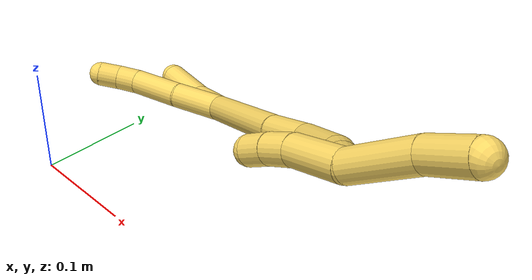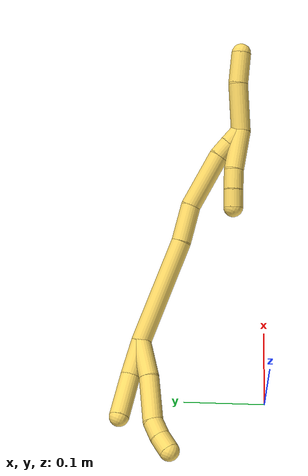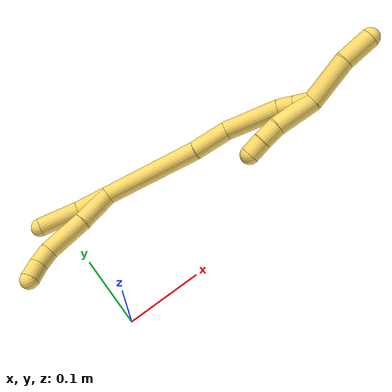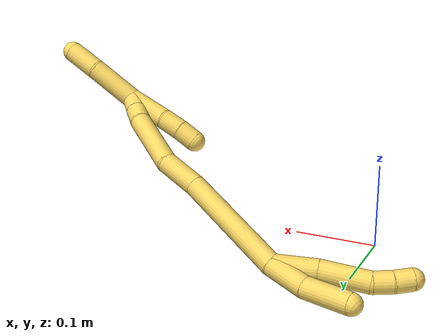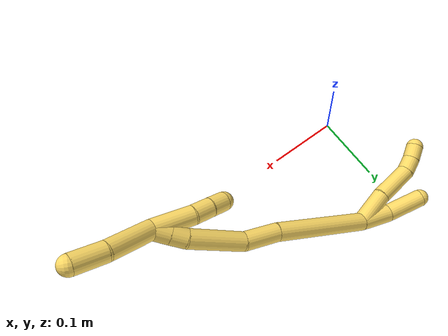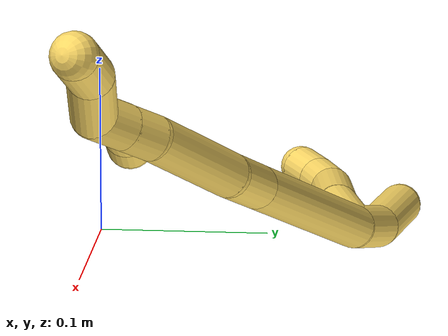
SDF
<sdf version="1.7">
 <world name="default">
  <model name="5">
   <static>0</static>
   <link name="5">
    <collision name="collision-cylinder-e_1_2_8">
     <pose>-0.011467 0.01063 -0.019661 -2.64595 -0.474018 1.5244</pose>
     <geometry><cylinder><radius>0.0125</radius><length>0.050241</length></cylinder></geometry>
     <surface>
      <friction><ode><mu>1.16</mu><mu2>1.16</mu2><slip1>0</slip1><slip2>0</slip2></ode></friction>
      <contact><ode><kp>1e+06</kp><kd>1</kd><max_vel>0</max_vel><min_depth>0.001</min_depth></ode></contact>
     </surface>
    </collision>
    <visual name="visual-cylinder-e_1_2_8">
     <pose>-0.011467 0.01063 -0.019661 -2.64595 -0.474018 1.5244</pose>
     <geometry><cylinder><radius>0.0125</radius><length>0.050241</length></cylinder></geometry>
     <material><ambient>1 0.858824 0.4 1</ambient></material>
    </visual>
    <collision name="collision-cylinder-e_2_8_9">
     <pose>-0.033848 0.030611 -0.063558 -2.77336 -0.397774 1.6498</pose>
     <geometry><cylinder><radius>0.0125</radius><length>0.056353</length></cylinder></geometry>
     <surface>
      <friction><ode><mu>1.16</mu><mu2>1.16</mu2><slip1>0</slip1><slip2>0</slip2></ode></friction>
      <contact><ode><kp>1e+06</kp><kd>1</kd><max_vel>0</max_vel><min_depth>0.001</min_depth></ode></contact>
     </surface>
    </collision>
    <visual name="visual-cylinder-e_2_8_9">
     <pose>-0.033848 0.030611 -0.063558 -2.77336 -0.397774 1.6498</pose>
     <geometry><cylinder><radius>0.0125</radius><length>0.056353</length></cylinder></geometry>
     <material><ambient>1 0.858824 0.4 1</ambient></material>
    </visual>
    <collision name="collision-cylinder-e_3_9_10">
     <pose>-0.051027 0.045658 -0.09493 -2.46795 -0.601249 1.44933</pose>
     <geometry><cylinder><radius>0.0125</radius><length>0.022146</length></cylinder></geometry>
     <surface>
      <friction><ode><mu>1.16</mu><mu2>1.16</mu2><slip1>0</slip1><slip2>0</slip2></ode></friction>
      <contact><ode><kp>1e+06</kp><kd>1</kd><max_vel>0</max_vel><min_depth>0.001</min_depth></ode></contact>
     </surface>
    </collision>
    <visual name="visual-cylinder-e_3_9_10">
     <pose>-0.051027 0.045658 -0.09493 -2.46795 -0.601249 1.44933</pose>
     <geometry><cylinder><radius>0.0125</radius><length>0.022146</length></cylinder></geometry>
     <material><ambient>1 0.858824 0.4 1</ambient></material>
    </visual>
    <collision name="collision-cylinder-e_4_10_6">
     <pose>-0.063983 0.057443 -0.107645 -2.31256 -0.681099 1.35597</pose>
     <geometry><cylinder><radius>0.0125</radius><length>0.021259</length></cylinder></geometry>
     <surface>
      <friction><ode><mu>1.16</mu><mu2>1.16</mu2><slip1>0</slip1><slip2>0</slip2></ode></friction>
      <contact><ode><kp>1e+06</kp><kd>1</kd><max_vel>0</max_vel><min_depth>0.001</min_depth></ode></contact>
     </surface>
    </collision>
    <visual name="visual-cylinder-e_4_10_6">
     <pose>-0.063983 0.057443 -0.107645 -2.31256 -0.681099 1.35597</pose>
     <geometry><cylinder><radius>0.0125</radius><length>0.021259</length></cylinder></geometry>
     <material><ambient>1 0.858824 0.4 1</ambient></material>
    </visual>
    <collision name="collision-cylinder-e_1_2_11">
     <pose>-0.002618 0.000826 -0.022514 -3.10494 -0.115685 2.52852</pose>
     <geometry><cylinder><radius>0.0125</radius><length>0.045361</length></cylinder></geometry>
     <surface>
      <friction><ode><mu>1.16</mu><mu2>1.16</mu2><slip1>0</slip1><slip2>0</slip2></ode></friction>
      <contact><ode><kp>1e+06</kp><kd>1</kd><max_vel>0</max_vel><min_depth>0.001</min_depth></ode></contact>
     </surface>
    </collision>
    <visual name="visual-cylinder-e_1_2_11">
     <pose>-0.002618 0.000826 -0.022514 -3.10494 -0.115685 2.52852</pose>
     <geometry><cylinder><radius>0.0125</radius><length>0.045361</length></cylinder></geometry>
     <material><ambient>1 0.858824 0.4 1</ambient></material>
    </visual>
    <collision name="collision-cylinder-e_2_11_5">
     <pose>-0.007432 0.009013 -0.071245 -2.86782 -0.080462 0.568605</pose>
     <geometry><cylinder><radius>0.0125</radius><length>0.054639</length></cylinder></geometry>
     <surface>
      <friction><ode><mu>1.16</mu><mu2>1.16</mu2><slip1>0</slip1><slip2>0</slip2></ode></friction>
      <contact><ode><kp>1e+06</kp><kd>1</kd><max_vel>0</max_vel><min_depth>0.001</min_depth></ode></contact>
     </surface>
    </collision>
    <visual name="visual-cylinder-e_2_11_5">
     <pose>-0.007432 0.009013 -0.071245 -2.86782 -0.080462 0.568605</pose>
     <geometry><cylinder><radius>0.0125</radius><length>0.054639</length></cylinder></geometry>
     <material><ambient>1 0.858824 0.4 1</ambient></material>
    </visual>
    <collision name="collision-cylinder-e_1_2_12">
     <pose>0.005643 0.010585 0.066991 -0.156708 0.083014 -0.006522</pose>
     <geometry><cylinder><radius>0.0125</radius><length>0.136113</length></cylinder></geometry>
     <surface>
      <friction><ode><mu>1.16</mu><mu2>1.16</mu2><slip1>0</slip1><slip2>0</slip2></ode></friction>
      <contact><ode><kp>1e+06</kp><kd>1</kd><max_vel>0</max_vel><min_depth>0.001</min_depth></ode></contact>
     </surface>
    </collision>
    <visual name="visual-cylinder-e_1_2_12">
     <pose>0.005643 0.010585 0.066991 -0.156708 0.083014 -0.006522</pose>
     <geometry><cylinder><radius>0.0125</radius><length>0.136113</length></cylinder></geometry>
     <material><ambient>1 0.858824 0.4 1</ambient></material>
    </visual>
    <collision name="collision-cylinder-e_2_12_13">
     <pose>0.015754 0.022841 0.157622 -0.07057 0.18635 -0.006597</pose>
     <geometry><cylinder><radius>0.0125</radius><length>0.048233</length></cylinder></geometry>
     <surface>
      <friction><ode><mu>1.16</mu><mu2>1.16</mu2><slip1>0</slip1><slip2>0</slip2></ode></friction>
      <contact><ode><kp>1e+06</kp><kd>1</kd><max_vel>0</max_vel><min_depth>0.001</min_depth></ode></contact>
     </surface>
    </collision>
    <visual name="visual-cylinder-e_2_12_13">
     <pose>0.015754 0.022841 0.157622 -0.07057 0.18635 -0.006597</pose>
     <geometry><cylinder><radius>0.0125</radius><length>0.048233</length></cylinder></geometry>
     <material><ambient>1 0.858824 0.4 1</ambient></material>
    </visual>
    <collision name="collision-cylinder-e_3_13_14">
     <pose>0.019574 0.034952 0.216393 -0.288875 -0.017681 0.002572</pose>
     <geometry><cylinder><radius>0.0125</radius><length>0.073311</length></cylinder></geometry>
     <surface>
      <friction><ode><mu>1.16</mu><mu2>1.16</mu2><slip1>0</slip1><slip2>0</slip2></ode></friction>
      <contact><ode><kp>1e+06</kp><kd>1</kd><max_vel>0</max_vel><min_depth>0.001</min_depth></ode></contact>
     </surface>
    </collision>
    <visual name="visual-cylinder-e_3_13_14">
     <pose>0.019574 0.034952 0.216393 -0.288875 -0.017681 0.002572</pose>
     <geometry><cylinder><radius>0.0125</radius><length>0.073311</length></cylinder></geometry>
     <material><ambient>1 0.858824 0.4 1</ambient></material>
    </visual>
    <collision name="collision-cylinder-e_4_14_15">
     <pose>0.016798 0.049008 0.260765 -0.372863 -0.211293 0.039998</pose>
     <geometry><cylinder><radius>0.0125</radius><length>0.020297</length></cylinder></geometry>
     <surface>
      <friction><ode><mu>1.16</mu><mu2>1.16</mu2><slip1>0</slip1><slip2>0</slip2></ode></friction>
      <contact><ode><kp>1e+06</kp><kd>1</kd><max_vel>0</max_vel><min_depth>0.001</min_depth></ode></contact>
     </surface>
    </collision>
    <visual name="visual-cylinder-e_4_14_15">
     <pose>0.016798 0.049008 0.260765 -0.372863 -0.211293 0.039998</pose>
     <geometry><cylinder><radius>0.0125</radius><length>0.020297</length></cylinder></geometry>
     <material><ambient>1 0.858824 0.4 1</ambient></material>
    </visual>
    <collision name="collision-cylinder-e_5_15_1">
     <pose>0.012235 0.056616 0.279988 -0.380569 -0.22267 0.043061</pose>
     <geometry><cylinder><radius>0.0125</radius><length>0.022046</length></cylinder></geometry>
     <surface>
      <friction><ode><mu>1.16</mu><mu2>1.16</mu2><slip1>0</slip1><slip2>0</slip2></ode></friction>
      <contact><ode><kp>1e+06</kp><kd>1</kd><max_vel>0</max_vel><min_depth>0.001</min_depth></ode></contact>
     </surface>
    </collision>
    <visual name="visual-cylinder-e_5_15_1">
     <pose>0.012235 0.056616 0.279988 -0.380569 -0.22267 0.043061</pose>
     <geometry><cylinder><radius>0.0125</radius><length>0.022046</length></cylinder></geometry>
     <material><ambient>1 0.858824 0.4 1</ambient></material>
    </visual>
    <collision name="collision-cylinder-e_1_1_16">
     <pose>0.003524 0.060739 0.264552 -3.13647 -0.242106 3.09947</pose>
     <geometry><cylinder><radius>0.0125</radius><length>0.052363</length></cylinder></geometry>
     <surface>
      <friction><ode><mu>1.16</mu><mu2>1.16</mu2><slip1>0</slip1><slip2>0</slip2></ode></friction>
      <contact><ode><kp>1e+06</kp><kd>1</kd><max_vel>0</max_vel><min_depth>0.001</min_depth></ode></contact>
     </surface>
    </collision>
    <visual name="visual-cylinder-e_1_1_16">
     <pose>0.003524 0.060739 0.264552 -3.13647 -0.242106 3.09947</pose>
     <geometry><cylinder><radius>0.0125</radius><length>0.052363</length></cylinder></geometry>
     <material><ambient>1 0.858824 0.4 1</ambient></material>
    </visual>
    <collision name="collision-cylinder-e_2_16_17">
     <pose>-0.007801 0.060294 0.227653 3.09146 -0.413773 -2.90382</pose>
     <geometry><cylinder><radius>0.0125</radius><length>0.025111</length></cylinder></geometry>
     <surface>
      <friction><ode><mu>1.16</mu><mu2>1.16</mu2><slip1>0</slip1><slip2>0</slip2></ode></friction>
      <contact><ode><kp>1e+06</kp><kd>1</kd><max_vel>0</max_vel><min_depth>0.001</min_depth></ode></contact>
     </surface>
    </collision>
    <visual name="visual-cylinder-e_2_16_17">
     <pose>-0.007801 0.060294 0.227653 3.09146 -0.413773 -2.90382</pose>
     <geometry><cylinder><radius>0.0125</radius><length>0.025111</length></cylinder></geometry>
     <material><ambient>1 0.858824 0.4 1</ambient></material>
    </visual>
    <collision name="collision-cylinder-e_3_17_4">
     <pose>-0.017894 0.05841 0.206187 3.01133 -0.464439 -2.60338</pose>
     <geometry><cylinder><radius>0.0125</radius><length>0.022526</length></cylinder></geometry>
     <surface>
      <friction><ode><mu>1.16</mu><mu2>1.16</mu2><slip1>0</slip1><slip2>0</slip2></ode></friction>
      <contact><ode><kp>1e+06</kp><kd>1</kd><max_vel>0</max_vel><min_depth>0.001</min_depth></ode></contact>
     </surface>
    </collision>
    <visual name="visual-cylinder-e_3_17_4">
     <pose>-0.017894 0.05841 0.206187 3.01133 -0.464439 -2.60338</pose>
     <geometry><cylinder><radius>0.0125</radius><length>0.022526</length></cylinder></geometry>
     <material><ambient>1 0.858824 0.4 1</ambient></material>
    </visual>
    <collision name="collision-cylinder-e_1_1_18">
     <pose>0.025282 0.064977 0.315493 -0.169469 0.538833 -0.046899</pose>
     <geometry><cylinder><radius>0.0125</radius><length>0.060338</length></cylinder></geometry>
     <surface>
      <friction><ode><mu>1.16</mu><mu2>1.16</mu2><slip1>0</slip1><slip2>0</slip2></ode></friction>
      <contact><ode><kp>1e+06</kp><kd>1</kd><max_vel>0</max_vel><min_depth>0.001</min_depth></ode></contact>
     </surface>
    </collision>
    <visual name="visual-cylinder-e_1_1_18">
     <pose>0.025282 0.064977 0.315493 -0.169469 0.538833 -0.046899</pose>
     <geometry><cylinder><radius>0.0125</radius><length>0.060338</length></cylinder></geometry>
     <material><ambient>1 0.858824 0.4 1</ambient></material>
    </visual>
    <collision name="collision-cylinder-e_2_18_3">
     <pose>0.047704 0.071304 0.359489 -0.105724 0.357625 -0.019126</pose>
     <geometry><cylinder><radius>0.0125</radius><length>0.039662</length></cylinder></geometry>
     <surface>
      <friction><ode><mu>1.16</mu><mu2>1.16</mu2><slip1>0</slip1><slip2>0</slip2></ode></friction>
      <contact><ode><kp>1e+06</kp><kd>1</kd><max_vel>0</max_vel><min_depth>0.001</min_depth></ode></contact>
     </surface>
    </collision>
    <visual name="visual-cylinder-e_2_18_3">
     <pose>0.047704 0.071304 0.359489 -0.105724 0.357625 -0.019126</pose>
     <geometry><cylinder><radius>0.0125</radius><length>0.039662</length></cylinder></geometry>
     <material><ambient>1 0.858824 0.4 1</ambient></material>
    </visual>
    <collision name="collision-sphere-3">
     <pose>0.054646 0.073264 0.377962 0 -0 0</pose>
     <geometry><sphere><radius>0.0125</radius></sphere></geometry>
     <surface>
      <friction><ode><mu>1.16</mu><mu2>1.16</mu2><slip1>0</slip1><slip2>0</slip2></ode></friction>
      <contact><ode><kp>1e+06</kp><kd>1</kd><max_vel>0</max_vel><min_depth>0.001</min_depth></ode></contact>
     </surface>
    </collision>
    <visual name="visual-sphere-3">
     <pose>0.054646 0.073264 0.377962 0 -0 0</pose>
     <geometry><sphere><radius>0.0125</radius></sphere></geometry>
     <material><ambient>1 0.858824 0.4 1</ambient></material>
    </visual>
    <collision name="collision-sphere-11">
     <pose>-0.005236 0.001651 -0.045028 0 -0 0</pose>
     <geometry><sphere><radius>0.0125</radius></sphere></geometry>
     <surface>
      <friction><ode><mu>1.16</mu><mu2>1.16</mu2><slip1>0</slip1><slip2>0</slip2></ode></friction>
      <contact><ode><kp>1e+06</kp><kd>1</kd><max_vel>0</max_vel><min_depth>0.001</min_depth></ode></contact>
     </surface>
    </collision>
    <visual name="visual-sphere-11">
     <pose>-0.005236 0.001651 -0.045028 0 -0 0</pose>
     <geometry><sphere><radius>0.0125</radius></sphere></geometry>
     <material><ambient>1 0.858824 0.4 1</ambient></material>
    </visual>
    <collision name="collision-sphere-6">
     <pose>-0.070676 0.063531 -0.113224 0 -0 0</pose>
     <geometry><sphere><radius>0.0125</radius></sphere></geometry>
     <surface>
      <friction><ode><mu>1.16</mu><mu2>1.16</mu2><slip1>0</slip1><slip2>0</slip2></ode></friction>
      <contact><ode><kp>1e+06</kp><kd>1</kd><max_vel>0</max_vel><min_depth>0.001</min_depth></ode></contact>
     </surface>
    </collision>
    <visual name="visual-sphere-6">
     <pose>-0.070676 0.063531 -0.113224 0 -0 0</pose>
     <geometry><sphere><radius>0.0125</radius></sphere></geometry>
     <material><ambient>1 0.858824 0.4 1</ambient></material>
    </visual>
    <collision name="collision-sphere-10">
     <pose>-0.05729 0.051355 -0.102066 0 -0 0</pose>
     <geometry><sphere><radius>0.0125</radius></sphere></geometry>
     <surface>
      <friction><ode><mu>1.16</mu><mu2>1.16</mu2><slip1>0</slip1><slip2>0</slip2></ode></friction>
      <contact><ode><kp>1e+06</kp><kd>1</kd><max_vel>0</max_vel><min_depth>0.001</min_depth></ode></contact>
     </surface>
    </collision>
    <visual name="visual-sphere-10">
     <pose>-0.05729 0.051355 -0.102066 0 -0 0</pose>
     <geometry><sphere><radius>0.0125</radius></sphere></geometry>
     <material><ambient>1 0.858824 0.4 1</ambient></material>
    </visual>
    <collision name="collision-sphere-9">
     <pose>-0.044763 0.039962 -0.087793 0 -0 0</pose>
     <geometry><sphere><radius>0.0125</radius></sphere></geometry>
     <surface>
      <friction><ode><mu>1.16</mu><mu2>1.16</mu2><slip1>0</slip1><slip2>0</slip2></ode></friction>
      <contact><ode><kp>1e+06</kp><kd>1</kd><max_vel>0</max_vel><min_depth>0.001</min_depth></ode></contact>
     </surface>
    </collision>
    <visual name="visual-sphere-9">
     <pose>-0.044763 0.039962 -0.087793 0 -0 0</pose>
     <geometry><sphere><radius>0.0125</radius></sphere></geometry>
     <material><ambient>1 0.858824 0.4 1</ambient></material>
    </visual>
    <collision name="collision-sphere-2">
     <geometry><sphere><radius>0.0125</radius></sphere></geometry>
     <surface>
      <friction><ode><mu>1.16</mu><mu2>1.16</mu2><slip1>0</slip1><slip2>0</slip2></ode></friction>
      <contact><ode><kp>1e+06</kp><kd>1</kd><max_vel>0</max_vel><min_depth>0.001</min_depth></ode></contact>
     </surface>
    </collision>
    <visual name="visual-sphere-2">
     <geometry><sphere><radius>0.0125</radius></sphere></geometry>
     <material><ambient>1 0.858824 0.4 1</ambient></material>
    </visual>
    <collision name="collision-sphere-8">
     <pose>-0.022933 0.02126 -0.039322 0 -0 0</pose>
     <geometry><sphere><radius>0.0125</radius></sphere></geometry>
     <surface>
      <friction><ode><mu>1.16</mu><mu2>1.16</mu2><slip1>0</slip1><slip2>0</slip2></ode></friction>
      <contact><ode><kp>1e+06</kp><kd>1</kd><max_vel>0</max_vel><min_depth>0.001</min_depth></ode></contact>
     </surface>
    </collision>
    <visual name="visual-sphere-8">
     <pose>-0.022933 0.02126 -0.039322 0 -0 0</pose>
     <geometry><sphere><radius>0.0125</radius></sphere></geometry>
     <material><ambient>1 0.858824 0.4 1</ambient></material>
    </visual>
    <collision name="collision-sphere-5">
     <pose>-0.009628 0.016376 -0.097461 0 -0 0</pose>
     <geometry><sphere><radius>0.0125</radius></sphere></geometry>
     <surface>
      <friction><ode><mu>1.16</mu><mu2>1.16</mu2><slip1>0</slip1><slip2>0</slip2></ode></friction>
      <contact><ode><kp>1e+06</kp><kd>1</kd><max_vel>0</max_vel><min_depth>0.001</min_depth></ode></contact>
     </surface>
    </collision>
    <visual name="visual-sphere-5">
     <pose>-0.009628 0.016376 -0.097461 0 -0 0</pose>
     <geometry><sphere><radius>0.0125</radius></sphere></geometry>
     <material><ambient>1 0.858824 0.4 1</ambient></material>
    </visual>
    <collision name="collision-sphere-12">
     <pose>0.011286 0.02117 0.133982 0 -0 0</pose>
     <geometry><sphere><radius>0.0125</radius></sphere></geometry>
     <surface>
      <friction><ode><mu>1.16</mu><mu2>1.16</mu2><slip1>0</slip1><slip2>0</slip2></ode></friction>
      <contact><ode><kp>1e+06</kp><kd>1</kd><max_vel>0</max_vel><min_depth>0.001</min_depth></ode></contact>
     </surface>
    </collision>
    <visual name="visual-sphere-12">
     <pose>0.011286 0.02117 0.133982 0 -0 0</pose>
     <geometry><sphere><radius>0.0125</radius></sphere></geometry>
     <material><ambient>1 0.858824 0.4 1</ambient></material>
    </visual>
    <collision name="collision-sphere-13">
     <pose>0.020223 0.024512 0.181262 0 -0 0</pose>
     <geometry><sphere><radius>0.0125</radius></sphere></geometry>
     <surface>
      <friction><ode><mu>1.16</mu><mu2>1.16</mu2><slip1>0</slip1><slip2>0</slip2></ode></friction>
      <contact><ode><kp>1e+06</kp><kd>1</kd><max_vel>0</max_vel><min_depth>0.001</min_depth></ode></contact>
     </surface>
    </collision>
    <visual name="visual-sphere-13">
     <pose>0.020223 0.024512 0.181262 0 -0 0</pose>
     <geometry><sphere><radius>0.0125</radius></sphere></geometry>
     <material><ambient>1 0.858824 0.4 1</ambient></material>
    </visual>
    <collision name="collision-sphere-14">
     <pose>0.018926 0.045393 0.251524 0 -0 0</pose>
     <geometry><sphere><radius>0.0125</radius></sphere></geometry>
     <surface>
      <friction><ode><mu>1.16</mu><mu2>1.16</mu2><slip1>0</slip1><slip2>0</slip2></ode></friction>
      <contact><ode><kp>1e+06</kp><kd>1</kd><max_vel>0</max_vel><min_depth>0.001</min_depth></ode></contact>
     </surface>
    </collision>
    <visual name="visual-sphere-14">
     <pose>0.018926 0.045393 0.251524 0 -0 0</pose>
     <geometry><sphere><radius>0.0125</radius></sphere></geometry>
     <material><ambient>1 0.858824 0.4 1</ambient></material>
    </visual>
    <collision name="collision-sphere-15">
     <pose>0.01467 0.052622 0.270006 0 -0 0</pose>
     <geometry><sphere><radius>0.0125</radius></sphere></geometry>
     <surface>
      <friction><ode><mu>1.16</mu><mu2>1.16</mu2><slip1>0</slip1><slip2>0</slip2></ode></friction>
      <contact><ode><kp>1e+06</kp><kd>1</kd><max_vel>0</max_vel><min_depth>0.001</min_depth></ode></contact>
     </surface>
    </collision>
    <visual name="visual-sphere-15">
     <pose>0.01467 0.052622 0.270006 0 -0 0</pose>
     <geometry><sphere><radius>0.0125</radius></sphere></geometry>
     <material><ambient>1 0.858824 0.4 1</ambient></material>
    </visual>
    <collision name="collision-sphere-1">
     <pose>0.009801 0.060609 0.28997 0 -0 0</pose>
     <geometry><sphere><radius>0.0125</radius></sphere></geometry>
     <surface>
      <friction><ode><mu>1.16</mu><mu2>1.16</mu2><slip1>0</slip1><slip2>0</slip2></ode></friction>
      <contact><ode><kp>1e+06</kp><kd>1</kd><max_vel>0</max_vel><min_depth>0.001</min_depth></ode></contact>
     </surface>
    </collision>
    <visual name="visual-sphere-1">
     <pose>0.009801 0.060609 0.28997 0 -0 0</pose>
     <geometry><sphere><radius>0.0125</radius></sphere></geometry>
     <material><ambient>1 0.858824 0.4 1</ambient></material>
    </visual>
    <collision name="collision-sphere-18">
     <pose>0.040763 0.069344 0.341017 0 -0 0</pose>
     <geometry><sphere><radius>0.0125</radius></sphere></geometry>
     <surface>
      <friction><ode><mu>1.16</mu><mu2>1.16</mu2><slip1>0</slip1><slip2>0</slip2></ode></friction>
      <contact><ode><kp>1e+06</kp><kd>1</kd><max_vel>0</max_vel><min_depth>0.001</min_depth></ode></contact>
     </surface>
    </collision>
    <visual name="visual-sphere-18">
     <pose>0.040763 0.069344 0.341017 0 -0 0</pose>
     <geometry><sphere><radius>0.0125</radius></sphere></geometry>
     <material><ambient>1 0.858824 0.4 1</ambient></material>
    </visual>
    <collision name="collision-sphere-16">
     <pose>-0.002753 0.06087 0.239135 0 -0 0</pose>
     <geometry><sphere><radius>0.0125</radius></sphere></geometry>
     <surface>
      <friction><ode><mu>1.16</mu><mu2>1.16</mu2><slip1>0</slip1><slip2>0</slip2></ode></friction>
      <contact><ode><kp>1e+06</kp><kd>1</kd><max_vel>0</max_vel><min_depth>0.001</min_depth></ode></contact>
     </surface>
    </collision>
    <visual name="visual-sphere-16">
     <pose>-0.002753 0.06087 0.239135 0 -0 0</pose>
     <geometry><sphere><radius>0.0125</radius></sphere></geometry>
     <material><ambient>1 0.858824 0.4 1</ambient></material>
    </visual>
    <collision name="collision-sphere-17">
     <pose>-0.012849 0.059718 0.216172 0 -0 0</pose>
     <geometry><sphere><radius>0.0125</radius></sphere></geometry>
     <surface>
      <friction><ode><mu>1.16</mu><mu2>1.16</mu2><slip1>0</slip1><slip2>0</slip2></ode></friction>
      <contact><ode><kp>1e+06</kp><kd>1</kd><max_vel>0</max_vel><min_depth>0.001</min_depth></ode></contact>
     </surface>
    </collision>
    <visual name="visual-sphere-17">
     <pose>-0.012849 0.059718 0.216172 0 -0 0</pose>
     <geometry><sphere><radius>0.0125</radius></sphere></geometry>
     <material><ambient>1 0.858824 0.4 1</ambient></material>
    </visual>
    <collision name="collision-sphere-4">
     <pose>-0.022939 0.057102 0.196202 0 -0 0</pose>
     <geometry><sphere><radius>0.0125</radius></sphere></geometry>
     <surface>
      <friction><ode><mu>1.16</mu><mu2>1.16</mu2><slip1>0</slip1><slip2>0</slip2></ode></friction>
      <contact><ode><kp>1e+06</kp><kd>1</kd><max_vel>0</max_vel><min_depth>0.001</min_depth></ode></contact>
     </surface>
    </collision>
    <visual name="visual-sphere-4">
     <pose>-0.022939 0.057102 0.196202 0 -0 0</pose>
     <geometry><sphere><radius>0.0125</radius></sphere></geometry>
     <material><ambient>1 0.858824 0.4 1</ambient></material>
    </visual>
    <inertial>
     <pose>0.001438 0.033504 0.116912 0 -0 0</pose>
     <mass>0.75</mass>
     <inertia><ixx>0.000313</ixx><ixy>0</ixy><ixz>0</ixz><iyy>0.000361</iyy><iyz>0</iyz><izz>-7e-05</izz></inertia>
    </inertial>
   </link>
   <pose>0.069077 0.156306 0.026947 1.28735 -0.465677 1.31292</pose>
  </model>
 </world>
</sdf>
